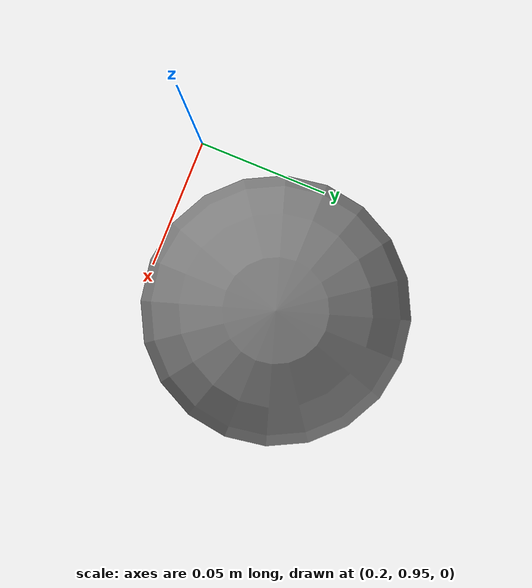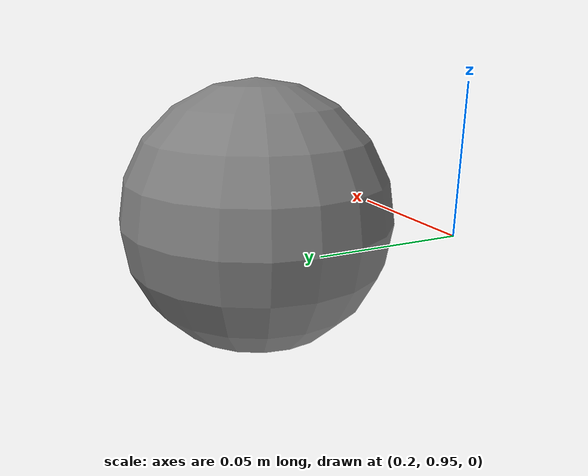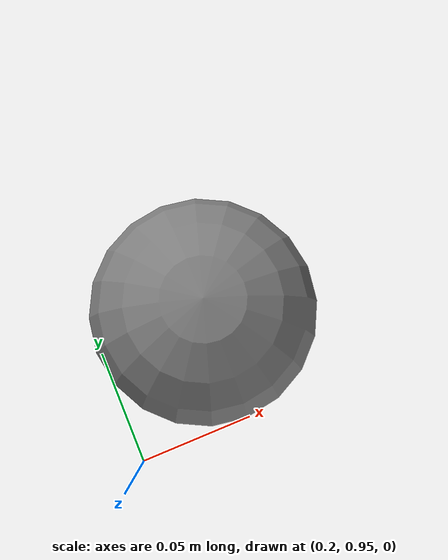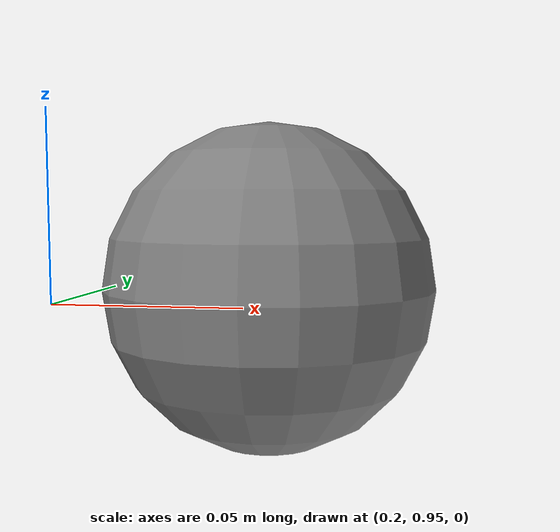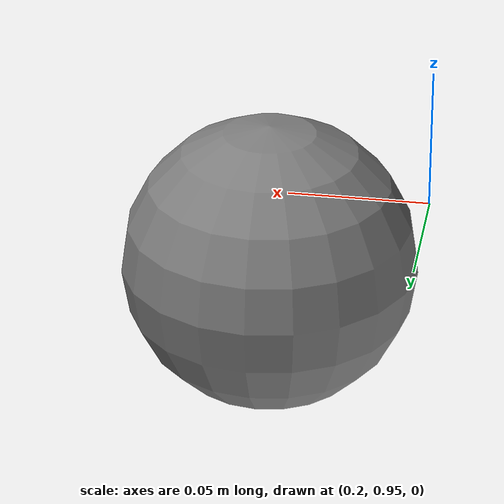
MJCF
<mujoco model="pendulum">
  <option gravity="0 -9.81 0" timestep="0.001"/>

  <worldbody>
    <light diffuse=".5 .5 .5" pos="0 0 -3" dir="0 0 1"/>

    <body name="pendulum_base" pos="0 1 0">
      <joint name="hinge" type="hinge" axis="0 0 1" damping="0" friction="0"/>
      <body name="rod" pos="0 0 0">
        <!-- The rod is modeled as a geom attached to the hinge body, but since it's massless and has no collision, we can just use the bob's position relative to the hinge -->
        <!-- However, the prompt asks for a rod of length 0.2485m. In MuJoCo, a massless rod is often just the distance between the joint and the bob. -->
        <body name="bob" pos="0.2485 0 0">
          <geom type="sphere" size="0.05" mass="1.0"/>
        </body>
      </body>
    </body>
  </worldbody>

  <keyframe>
      <key qpos="1.570796" name="horizontal"/>
    </keyframe>
</mujoco>
